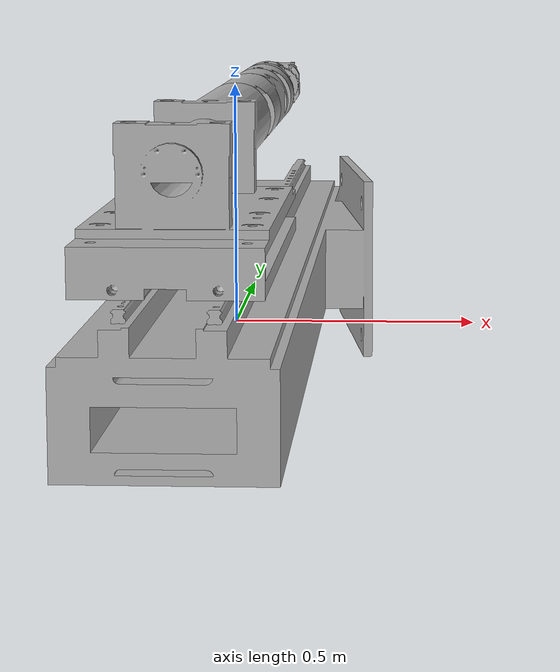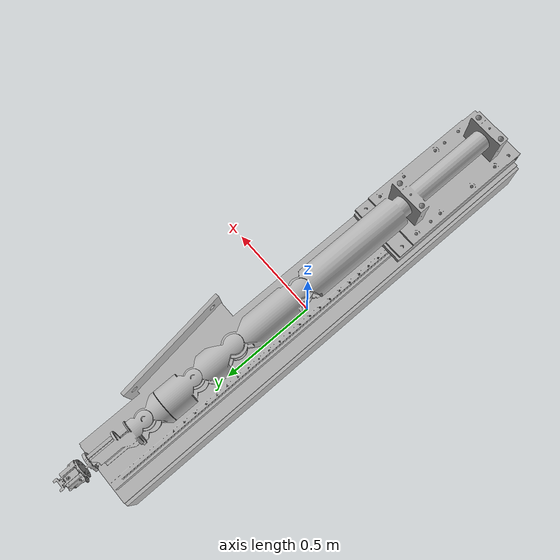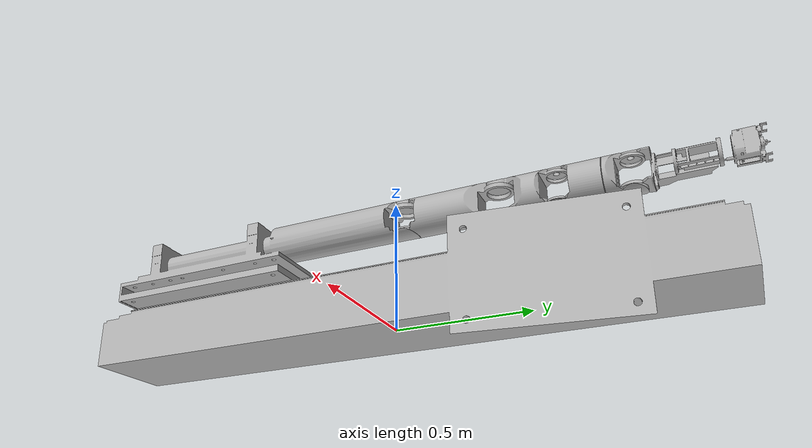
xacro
<?xml version="1.0" ?>
<robot name="URDF_RFX2M" xmlns:xacro="http://www.ros.org/wiki/xacro">

<xacro:include filename="$(find URDF_RFX2M_description)/urdf/materials.xacro" />
<xacro:include filename="$(find URDF_RFX2M_description)/urdf/URDF_RFX2M.trans" />
<xacro:include filename="$(find URDF_RFX2M_description)/urdf/URDF_RFX2M.gazebo" />

<link name="world"/>
<joint name="base_joint" type="fixed">
  <origin xyz="0.0 0.0 0.0" rpy="-1.57 0 3.14"/>
  <parent link="world"/>
  <child link="base_link"/>
  <axis xyz="1.0 0.0 0.0"/>
</joint>

<link name="base_link">
  <inertial>
    <origin xyz="-0.015429636640350058 -0.08325450473970307 -0.019371234882815974" rpy="0 0 0"/>
    <mass value="1104.1986787985823"/>
    <inertia ixx="529.76216" iyy="539.973429" izz="21.057414" ixy="0.334368" iyz="0.947426" ixz="-8.876234"/>
  </inertial>
  <visual>
    <origin xyz="0 0 0" rpy="0 0 0"/>
    <geometry>
      <mesh filename="package://URDF_RFX2M_description/meshes/base_link.stl" scale="0.001 0.001 0.001"/>
    </geometry>
    <material name="silver"/>
  </visual>
  <collision>
    <origin xyz="0 0 0" rpy="0 0 0"/>
    <geometry>
      <mesh filename="package://URDF_RFX2M_description/meshes/base_link.stl" scale="0.001 0.001 0.001"/>
    </geometry>
  </collision>
</link>

<link name="component1_1">
  <inertial>
    <origin xyz="0.0002793430137726061 -0.1723663272101364 -0.5037033295054952" rpy="0 0 0"/>
    <mass value="144.34045536345818"/>
    <inertia ixx="13.178644" iyy="13.240976" izz="1.559676" ixy="3.1e-05" iyz="-0.891589" ixz="-0.001015"/>
  </inertial>
  <visual>
    <origin xyz="0.000548 0.168238 -1.227762" rpy="0 0 0"/>
    <geometry>
      <mesh filename="package://URDF_RFX2M_description/meshes/component1_1.stl" scale="0.001 0.001 0.001"/>
    </geometry>
    <material name="silver"/>
  </visual>
  <collision>
    <origin xyz="0.000548 0.168238 -1.227762" rpy="0 0 0"/>
    <geometry>
      <mesh filename="package://URDF_RFX2M_description/meshes/component1_1.stl" scale="0.001 0.001 0.001"/>
    </geometry>
  </collision>
</link>

<link name="component2_1">
  <inertial>
    <origin xyz="0.00027379438403212403 0.04349469394808281 -0.17606244939284615" rpy="0 0 0"/>
    <mass value="22.675388738367065"/>
    <inertia ixx="0.277482" iyy="0.265004" izz="0.071708" ixy="0.0" iyz="0.009494" ixz="-0.0"/>
  </inertial>
  <visual>
    <origin xyz="0.000548 0.473238 0.042238" rpy="0 0 0"/>
    <geometry>
      <mesh filename="package://URDF_RFX2M_description/meshes/component2_1.stl" scale="0.001 0.001 0.001"/>
    </geometry>
    <material name="silver"/>
  </visual>
  <collision>
    <origin xyz="0.000548 0.473238 0.042238" rpy="0 0 0"/>
    <geometry>
      <mesh filename="package://URDF_RFX2M_description/meshes/component2_1.stl" scale="0.001 0.001 0.001"/>
    </geometry>
  </collision>
</link>

<link name="component3_1">
  <inertial>
    <origin xyz="0.0002737120935555821 0.026421347239515225 -0.10509099081386819" rpy="0 0 0"/>
    <mass value="15.257452989189812"/>
    <inertia ixx="0.065456" iyy="0.053354" izz="0.045818" ixy="0.0" iyz="0.00634" ixz="0.0"/>
  </inertial>
  <visual>
    <origin xyz="0.000548 0.457236 0.402239" rpy="0 0 0"/>
    <geometry>
      <mesh filename="package://URDF_RFX2M_description/meshes/component3_1.stl" scale="0.001 0.001 0.001"/>
    </geometry>
    <material name="silver"/>
  </visual>
  <collision>
    <origin xyz="0.000548 0.457236 0.402239" rpy="0 0 0"/>
    <geometry>
      <mesh filename="package://URDF_RFX2M_description/meshes/component3_1.stl" scale="0.001 0.001 0.001"/>
    </geometry>
  </collision>
</link>

<link name="component4_1">
  <inertial>
    <origin xyz="0.0002737218161251568 0.05387832711341334 -0.09285939406597998" rpy="0 0 0"/>
    <mass value="7.394546349339286"/>
    <inertia ixx="0.035517" iyy="0.031931" izz="0.030213" ixy="-0.0" iyz="0.000523" ixz="0.0"/>
  </inertial>
  <visual>
    <origin xyz="0.000548 0.482235 0.611738" rpy="0 0 0"/>
    <geometry>
      <mesh filename="package://URDF_RFX2M_description/meshes/component4_1.stl" scale="0.001 0.001 0.001"/>
    </geometry>
    <material name="silver"/>
  </visual>
  <collision>
    <origin xyz="0.000548 0.482235 0.611738" rpy="0 0 0"/>
    <geometry>
      <mesh filename="package://URDF_RFX2M_description/meshes/component4_1.stl" scale="0.001 0.001 0.001"/>
    </geometry>
  </collision>
</link>

<link name="component5_1">
  <inertial>
    <origin xyz="0.00027378417857530467 0.0003414569467939943 -0.02902808978336946" rpy="0 0 0"/>
    <mass value="5.57340893512816"/>
    <inertia ixx="0.014069" iyy="0.010117" izz="0.016978" ixy="-0.0" iyz="0.000883" ixz="-0.0"/>
  </inertial>
  <visual>
    <origin xyz="0.000548 0.427236 0.771739" rpy="0 0 0"/>
    <geometry>
      <mesh filename="package://URDF_RFX2M_description/meshes/component5_1.stl" scale="0.001 0.001 0.001"/>
    </geometry>
    <material name="silver"/>
  </visual>
  <collision>
    <origin xyz="0.000548 0.427236 0.771739" rpy="0 0 0"/>
    <geometry>
      <mesh filename="package://URDF_RFX2M_description/meshes/component5_1.stl" scale="0.001 0.001 0.001"/>
    </geometry>
  </collision>
</link>

<link name="component6_1">
  <inertial>
    <origin xyz="0.005324787334109267 -0.04800529420044636 -0.07054978894640074" rpy="0 0 0"/>
    <mass value="2.930128680505051"/>
    <inertia ixx="0.021075" iyy="0.01551" izz="0.008632" ixy="-2.2e-05" iyz="0.000276" ixz="8.7e-05"/>
  </inertial>
  <visual>
    <origin xyz="0.000548 0.382236 0.861739" rpy="0 0 0"/>
    <geometry>
      <mesh filename="package://URDF_RFX2M_description/meshes/component6_1.stl" scale="0.001 0.001 0.001"/>
    </geometry>
    <material name="silver"/>
  </visual>
  <collision>
    <origin xyz="0.000548 0.382236 0.861739" rpy="0 0 0"/>
    <geometry>
      <mesh filename="package://URDF_RFX2M_description/meshes/component6_1.stl" scale="0.001 0.001 0.001"/>
    </geometry>
  </collision>
</link>

<link name="component7_1">
  <inertial>
    <origin xyz="-0.00943880103688833 0.035537312318859315 -0.1699345489804296" rpy="0 0 0"/>
    <mass value="3.1244978480918024"/>
    <inertia ixx="0.013058" iyy="0.012647" izz="0.003921" ixy="7.5e-05" iyz="-0.0001" ixz="-0.000157"/>
  </inertial>
  <visual>
    <origin xyz="0.014348 0.464274 1.004176" rpy="0 0 0"/>
    <geometry>
      <mesh filename="package://URDF_RFX2M_description/meshes/component7_1.stl" scale="0.001 0.001 0.001"/>
    </geometry>
    <material name="silver"/>
  </visual>
  <collision>
    <origin xyz="0.014348 0.464274 1.004176" rpy="0 0 0"/>
    <geometry>
      <mesh filename="package://URDF_RFX2M_description/meshes/component7_1.stl" scale="0.001 0.001 0.001"/>
    </geometry>
  </collision>
</link>

<link name="component9_1">
  <inertial>
    <origin xyz="-0.01722621080015314 -0.0004197514803516156 -0.03929366453705119" rpy="0 0 0"/>
    <mass value="0.05078466303142924"/>
    <inertia ixx="3.2e-05" iyy="3.7e-05" izz="1e-05" ixy="-0.0" iyz="-4e-06" ixz="0.0"/>
  </inertial>
  <visual>
    <origin xyz="0.003048 0.470238 1.193938" rpy="0 0 0"/>
    <geometry>
      <mesh filename="package://URDF_RFX2M_description/meshes/component9_1.stl" scale="0.001 0.001 0.001"/>
    </geometry>
    <material name="silver"/>
  </visual>
  <collision>
    <origin xyz="0.003048 0.470238 1.193938" rpy="0 0 0"/>
    <geometry>
      <mesh filename="package://URDF_RFX2M_description/meshes/component9_1.stl" scale="0.001 0.001 0.001"/>
    </geometry>
  </collision>
</link>

<link name="component10_1">
  <inertial>
    <origin xyz="-0.01722621079988467 0.00041996021720852594 -0.03929366441336213" rpy="0 0 0"/>
    <mass value="0.05078466244433991"/>
    <inertia ixx="3.2e-05" iyy="3.7e-05" izz="1e-05" ixy="0.0" iyz="4e-06" ixz="0.0"/>
  </inertial>
  <visual>
    <origin xyz="0.003048 0.386238 1.193938" rpy="0 0 0"/>
    <geometry>
      <mesh filename="package://URDF_RFX2M_description/meshes/component10_1.stl" scale="0.001 0.001 0.001"/>
    </geometry>
    <material name="silver"/>
  </visual>
  <collision>
    <origin xyz="0.003048 0.386238 1.193938" rpy="0 0 0"/>
    <geometry>
      <mesh filename="package://URDF_RFX2M_description/meshes/component10_1.stl" scale="0.001 0.001 0.001"/>
    </geometry>
  </collision>
</link>

<link name="component8_1">
  <inertial>
    <origin xyz="0.0002657722140549171 -8.21722739580144e-06 0.0007449867077395922" rpy="0 0 0"/>
    <mass value="0.08275423082782347"/>
    <inertia ixx="3.3e-05" iyy="3.3e-05" izz="1.1e-05" ixy="0.0" iyz="0.0" ixz="-0.0"/>
  </inertial>
  <visual>
    <origin xyz="0.020548 0.428238 1.247938" rpy="0 0 0"/>
    <geometry>
      <mesh filename="package://URDF_RFX2M_description/meshes/component8_1.stl" scale="0.001 0.001 0.001"/>
    </geometry>
    <material name="silver"/>
  </visual>
  <collision>
    <origin xyz="0.020548 0.428238 1.247938" rpy="0 0 0"/>
    <geometry>
      <mesh filename="package://URDF_RFX2M_description/meshes/component8_1.stl" scale="0.001 0.001 0.001"/>
    </geometry>
  </collision>
</link>

<joint name="j1" type="prismatic">
  <origin xyz="-0.000548 -0.168238 1.227762" rpy="0 0 0"/>
  <parent link="base_link"/>
  <child link="component1_1"/>
  <axis xyz="0.0 -0.0 -1.0"/>
  <limit upper="1.5" lower="0.0" effort="100" velocity="100"/>
</joint>

<joint name="j2" type="revolute">
  <origin xyz="0.0 -0.305 -1.27" rpy="0 0 0"/>
  <parent link="component1_1"/>
  <child link="component2_1"/>
  <axis xyz="-0.0 -1.0 0.0"/>
  <limit upper="1.221" lower="-1.221" effort="100" velocity="100"/>
</joint>

<joint name="j3" type="revolute">
  <origin xyz="0.0 0.016002 -0.360001" rpy="0 0 0"/>
  <parent link="component2_1"/>
  <child link="component3_1"/>
  <axis xyz="0.0 -1.0 0.0"/>
  <limit upper="1.919" lower="-1.919" effort="100" velocity="100"/>
</joint>

<joint name="j4" type="revolute">
  <origin xyz="0.0 -0.024999 -0.209499" rpy="0 0 0"/>
  <parent link="component3_1"/>
  <child link="component4_1"/>
  <axis xyz="-0.0 -1.0 0.0"/>
  <limit upper="1.396" lower="-1.396" effort="100" velocity="100"/>
</joint>

<joint name="j5" type="revolute">
  <origin xyz="0.0 0.054999 -0.160001" rpy="0 0 0"/>
  <parent link="component4_1"/>
  <child link="component5_1"/>
  <axis xyz="0.0 -0.0 -1.0"/>
  <limit upper="3.14" lower="-3.14" effort="100" velocity="100"/>
</joint>

<joint name="j6" type="revolute">
  <origin xyz="0.0 0.045 -0.09" rpy="0 0 0"/>
  <parent link="component5_1"/>
  <child link="component6_1"/>
  <axis xyz="-0.0 1.0 -0.0"/>
  <limit upper="1.57" lower="-1.57" effort="100" velocity="100"/>
</joint>

<joint name="j7" type="prismatic">
  <origin xyz="-0.0138 -0.082038 -0.142437" rpy="0 0 0"/>
  <parent link="component6_1"/>
  <child link="component7_1"/>
  <axis xyz="0.0 0.0 -1.0"/>
  <limit upper="0.06" lower="0.0" effort="100" velocity="100"/>
</joint>

<joint name="pinza" type="revolute">
  <origin xyz="0.0113 -0.005964 -0.189762" rpy="0 0 0"/>
  <parent link="component7_1"/>
  <child link="component9_1"/>
  <axis xyz="1.0 0.0 0.0"/>
  <limit lower="-0.031" upper="0" effort="0" velocity="0"/>
</joint>

<joint name="pinza2" type="continuous">
  <origin xyz="0.0113 0.078036 -0.189762" rpy="0 0 0"/>
  <parent link="component7_1"/>
  <child link="component10_1"/>
  <axis xyz="1.0 0.0 0.0"/>
  <mimic joint="pinza" multiplier="-1" offset="0"/>
</joint>

<joint name="avvitatore" type="revolute">
  <origin xyz="-0.0062 0.036036 -0.243762" rpy="0 0 0"/>
  <parent link="component7_1"/>
  <child link="component8_1"/>
  <axis xyz="0.0 -0.0 -1.0"/>
  <limit effort="0" lower="0" upper="1.5708" velocity="0"/>
</joint>

</robot>

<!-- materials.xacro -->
<robot name="URDF_RFX2M" xmlns:xacro="http://www.ros.org/wiki/xacro" >

<material name="silver">
  <color rgba="0.700 0.700 0.700 1.000"/>
</material>

</robot>

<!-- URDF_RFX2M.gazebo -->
<robot name="URDF_RFX2M" xmlns:xacro="http://www.ros.org/wiki/xacro" >

<xacro:property name="body_color" value="Gazebo/Silver" />

<gazebo>
  <plugin name="control" filename="libgazebo_ros_control.so"/>
</gazebo>
<gazebo reference="base_link">
  <material>${body_color}</material>
  <mu1>0.2</mu1>
  <mu2>0.2</mu2>
  <selfCollide>true</selfCollide>
  <gravity>true</gravity>
</gazebo>

<gazebo reference="component1_1">
  <material>${body_color}</material>
  <mu1>0.2</mu1>
  <mu2>0.2</mu2>
  <selfCollide>true</selfCollide>
</gazebo>

<gazebo reference="component2_1">
  <material>${body_color}</material>
  <mu1>0.2</mu1>
  <mu2>0.2</mu2>
  <selfCollide>true</selfCollide>
</gazebo>

<gazebo reference="component3_1">
  <material>${body_color}</material>
  <mu1>0.2</mu1>
  <mu2>0.2</mu2>
  <selfCollide>true</selfCollide>
</gazebo>

<gazebo reference="component4_1">
  <material>${body_color}</material>
  <mu1>0.2</mu1>
  <mu2>0.2</mu2>
  <selfCollide>true</selfCollide>
</gazebo>

<gazebo reference="component5_1">
  <material>${body_color}</material>
  <mu1>0.2</mu1>
  <mu2>0.2</mu2>
  <selfCollide>true</selfCollide>
</gazebo>

<gazebo reference="component6_1">
  <material>${body_color}</material>
  <mu1>0.2</mu1>
  <mu2>0.2</mu2>
  <selfCollide>true</selfCollide>
</gazebo>

<gazebo reference="component7_1">
  <material>${body_color}</material>
  <mu1>0.2</mu1>
  <mu2>0.2</mu2>
  <selfCollide>true</selfCollide>
</gazebo>

<gazebo reference="component9_1">
  <material>${body_color}</material>
  <mu1>0.2</mu1>
  <mu2>0.2</mu2>
  <selfCollide>true</selfCollide>
</gazebo>

<gazebo reference="component10_1">
  <material>${body_color}</material>
  <mu1>0.2</mu1>
  <mu2>0.2</mu2>
  <selfCollide>true</selfCollide>
</gazebo>

<gazebo reference="component8_1">
  <material>${body_color}</material>
  <mu1>0.2</mu1>
  <mu2>0.2</mu2>
  <selfCollide>true</selfCollide>
</gazebo>

</robot>
